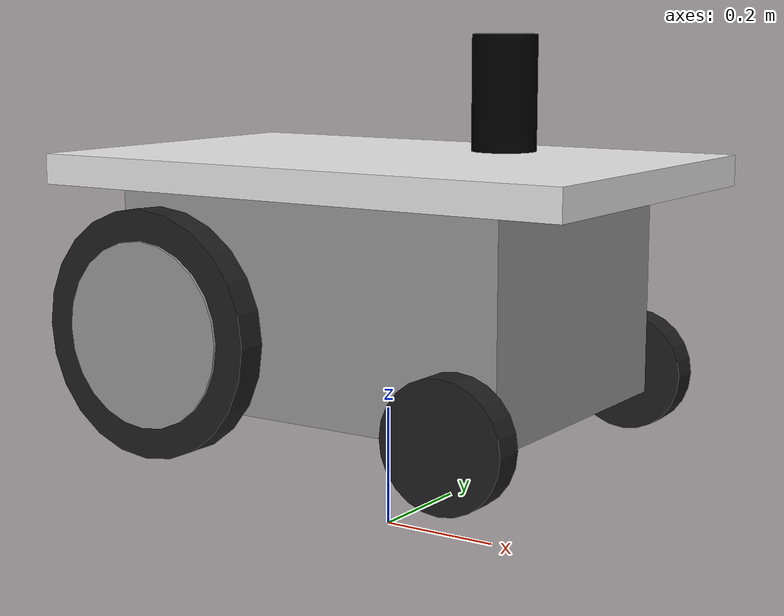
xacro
<?xml version="1.0" encoding="UTF-8"?>
<robot xmlns:xacro="http://www.ros.org/wiki/xacro" name="mm">
   <xacro:include filename="mm.gazebo.xacro" />
   <link name="robot_footprint">
      <origin xyz="0 0 0" rpy="0 0 0" />
   </link>
   <joint name="robot_footprint_joint" type="fixed">
      <origin xyz="0 0 0.6" rpy="0 0 0" />
      <parent link="robot_footprint" />
      <child link="chassis" />
   </joint>
   <link name="chassis">
      <pose>0 0 0.1 0 0 0</pose>
      <inertial>
         <mass value="20.0" />
         <origin xyz="0.0 0 0" rpy=" 0 0 0" />
         <inertia ixx="0.1" ixy="0" ixz="0" iyy="0.1" iyz="0" izz="0.1" />
      </inertial>
      <collision name="collision">
         <origin xyz="0 0 0" rpy=" 0 0 0" />
         <geometry>
            <box size=".95 .6 .05" />
         </geometry>
      </collision>
      <visual name="chassis_visual">
         <origin xyz="0 0 0" rpy=" 0 0 0" />
         <geometry>
            <box size=".95 .6 .05" />
         </geometry>
      </visual>
   </link>
   <link name="box">
      <inertial>
         <mass value="20.0" />
         <origin xyz="0.0 0 0" rpy=" 0 0 0" />
         <inertia ixx="0.1" ixy="0" ixz="0" iyy="0.1" iyz="0" izz="0.1" />
      </inertial>
      <collision name="collision">
         <origin xyz="0 0 0.05" rpy=" 0 0 0" />
         <geometry>
            <box size=".7 .5 .35" />
         </geometry>
      </collision>
      <visual name="box_visual">
         <origin xyz="0 0 0.05" rpy=" 0 0 0" />
         <geometry>
            <box size=".7 .5 .35" />
         </geometry>
      </visual>
   </link>
   <joint name="box_joint" type="fixed">
      <origin xyz="0 0 -0.25" rpy="0 0 0" />
      <parent link="chassis" />
      <child link="box" />
   </joint>
   <link name="front_right_wheel">
      <visual name="front_right_wheel_visual">
         <origin xyz="0.0 0 0" rpy=" 0 1.5707 1.5707" />
         <geometry>
            <cylinder length="0.05" radius="0.1" />
         </geometry>
      </visual>
      <collision>
         <origin xyz="0.0 0 0" rpy=" 0 1.5707 1.5707" />
         <geometry>
            <cylinder length="0.05" radius="0.1" />
         </geometry>
      </collision>
      <inertial>
         <origin xyz="0.0 0 0" rpy=" 0 1.5707 1.5707" />
         <mass value="5.0" />
         <inertia ixx="0.1" ixy="0" ixz="0" iyy="0.1" iyz="0" izz="0.1" />
      </inertial>
   </link>
   <link name="back_right_wheel">
      <visual name="back_right_wheel_visual">
         <origin xyz="0.0 0 0" rpy=" 0 1.5707 1.5707" />
         <geometry>
            <cylinder length="0.05" radius="0.2" />
         </geometry>
      </visual>
      <collision>
         <origin xyz="0.0 0 0" rpy=" 0 1.5707 1.5707" />
         <geometry>
            <cylinder length="0.05" radius="0.2" />
         </geometry>
      </collision>
      <inertial>
         <origin xyz="0.0 0 0" rpy=" 0 1.5707 1.5707" />
         <mass value="0.5" />
         <inertia ixx="0.1" ixy="0" ixz="0" iyy="0.1" iyz="0" izz="0.1" />
      </inertial>
   </link>
   <link name="back_right_wheel_cover">
      <visual name="back_right_wheel_cover_visual">
         <origin xyz="0.0 0 0" rpy=" 0 1.5707 1.5707" />
         <geometry>
            <cylinder length="0.01" radius="0.15" />
         </geometry>
      </visual>
      <collision>
         <origin xyz="0.0 0 0" rpy=" 0 1.5707 1.5707" />
         <geometry>
            <cylinder length="0.01" radius="0.15" />
         </geometry>
      </collision>
      <inertial>
         <origin xyz="0.0 0 0" rpy=" 0 1.5707 1.5707" />
         <inertia ixx="0.1" ixy="0" ixz="0" iyy="0.1" iyz="0" izz="0.1" />
         <mass value="0.01" />
      </inertial>
   </link>
   <joint name="front_right_wheel_joint" type="continuous">
      <axis xyz="0 1 0" rpy="0 0 0" />
      <dynamics damping="1.0" friction="1.0" />
      <parent link="chassis" />
      <child link="front_right_wheel" />
      <origin xyz="0.3 -0.3 -0.35" rpy="0 0 0" />
   </joint>
   <joint name="back_right_wheel_joint" type="continuous">
      <axis xyz="0 1 0" rpy="0 0 0" />
      <dynamics damping="1.0" friction="1.0" />
      <parent link="chassis" />
      <child link="back_right_wheel" />
      <origin xyz="-0.25 -0.3 -0.25" rpy="0 0 0" />
   </joint>
   <joint name="back_right_wheel_cover_joint" type="continuous">
      <axis xyz="0 1 0" rpy="0 0 0" />
      <dynamics damping="1.0" friction="1.0" />
      <parent link="back_right_wheel" />
      <child link="back_right_wheel_cover" />
      <origin xyz="0 -0.025 0" rpy="0 0 0" />
   </joint>
   <link name="front_left_wheel">
      <visual name="front_left_wheel_visual">
         <origin xyz="0.0 0 0" rpy=" 0 1.5707 1.5707" />
         <geometry>
            <cylinder length="0.05" radius="0.1" />
         </geometry>
      </visual>
      <collision>
         <origin xyz="0.0 0 0" rpy=" 0 1.5707 1.5707" />
         <geometry>
            <cylinder length="0.05" radius="0.1" />
         </geometry>
      </collision>
      <inertial>
         <origin xyz="0.0 0 0" rpy=" 0 1.5707 1.5707" />
         <mass value="5.0" />
         <inertia ixx="0.1" ixy="0" ixz="0" iyy="0.1" iyz="0" izz="0.1" />
      </inertial>
   </link>
   <link name="back_left_wheel_cover">
      <visual name="back_left_wheel_cover_visual">
         <origin xyz="0.0 0 0" rpy=" 0 1.5707 1.5707" />
         <geometry>
            <cylinder length="0.01" radius="0.15" />
         </geometry>
      </visual>
      <collision>
         <origin xyz="0.0 0 0" rpy=" 0 1.5707 1.5707" />
         <geometry>
            <cylinder length="0.01" radius="0.15" />
         </geometry>
      </collision>
      <inertial>
         <origin xyz="0.0 0 0" rpy=" 0 1.5707 1.5707" />
         <inertia ixx="0.1" ixy="0" ixz="0" iyy="0.1" iyz="0" izz="0.1" />
         <mass value="0.01" />
      </inertial>
   </link>
   <link name="back_left_wheel">
      <visual name="back_left_wheel_visual">
         <origin xyz="0.0 0 0" rpy=" 0 1.5707 1.5707" />
         <geometry>
            <cylinder length="0.05" radius="0.2" />
         </geometry>
      </visual>
      <collision>
         <origin xyz="0.0 0 0" rpy=" 0 1.5707 1.5707" />
         <geometry>
            <cylinder length="0.05" radius="0.2" />
         </geometry>
      </collision>
      <inertial>
         <origin xyz="0.0 0 0" rpy=" 0 1.5707 1.5707" />
         <inertia ixx="0.1" ixy="0" ixz="0" iyy="0.1" iyz="0" izz="0.1" />
         <mass value="0.5" />
      </inertial>
   </link>
   <joint name="front_left_wheel_joint" type="continuous">
      <axis xyz="0 1 0" rpy="0 0 0" />
      <dynamics damping="1.0" friction="1.0" />
      <parent link="chassis" />
      <child link="front_left_wheel" />
      <origin xyz="0.3 0.3 -0.35" rpy="0 0 0" />
   </joint>
   <joint name="back_left_wheel_joint" type="continuous">
      <axis xyz="0 1 0" rpy="0 0 0" />
      <dynamics damping="1.0" friction="1.0" />
      <parent link="chassis" />
      <child link="back_left_wheel" />
      <origin xyz="-0.25 0.3 -0.25" rpy="0 0 0" />
   </joint>
   <joint name="back_left_wheel_cover_joint" type="continuous">
      <axis xyz="0 1 0" rpy="0 0 0" />
      <parent link="back_left_wheel" />
      <child link="back_left_wheel_cover" />
      <origin xyz="0 0.025 0" rpy="0 0 0" />
   </joint>
   <!-- *********************** IMU SENSOR SETUP **********************************  -->
   <joint name="imu_joint" type="fixed">
    <parent link="chassis"/>
    <child link="imu_link"/>
    <origin xyz="0.10 0 0.05" rpy="0 0 0"/>
  </joint>

   <!-- *********************** IMU SENSOR SETUP **************************  -->
  <link name="imu_link"/>
   <!-- *********************** GPS SETUP **********************************  -->
  <joint name="gps_joint" type="fixed">
    <parent link="chassis"/>
    <child link="gps_link"/>
    <origin xyz="0.10 0 0.05" rpy="0 0 0"/>
  </joint>

  <!-- *********************** GPS SETUP *********************************  -->
  <link name="gps_link"/>

   <!-- *********************** LIDAR SETUP **********************************  -->
  <joint name="lidar_joint" type="fixed">
    <parent link="chassis"/>
    <child link="lidar_link"/>
    <origin xyz="0.215 0 0.13" rpy="0 0 0"/>
  </joint>

  <link name="lidar_link">

    <collision>
     <origin xyz="0 0 0" rpy="0 0 0"/>
     <geometry>
      <cylinder radius="0.0508" length="0.18"/>
     </geometry>
    </collision>

    <visual>
     <origin xyz="0 0 0" rpy="0 0 0"/>
     <geometry>
      <cylinder radius="0.0508" length="0.18"/>
     </geometry>
     <material name="Black">
          <color rgba="${0/255} ${0/255} ${0/255} 1.0"/>
     </material>
    </visual>

    <inertial>
      <mass value="0.114" />
      <origin xyz="0 0 0" rpy="0 0 0"/>
      <inertia ixx="0.001" ixy="0" ixz="0" iyy="0.001" iyz="0" izz="0.001" />
    </inertial>
  </link>
   <gazebo reference="chassis">
      <material>Gazebo/White</material>
   </gazebo>
   <gazebo reference="box">
      <material>Gazebo/Grey</material>
   </gazebo>
   <gazebo reference="front_right_wheel">
      <material>Gazebo/Black</material>
   </gazebo>
   <gazebo reference="front_left_wheel">
      <material>Gazebo/Black</material>
   </gazebo>
   <gazebo reference="back_right_wheel">
      <material>Gazebo/Black</material>
   </gazebo>
   <gazebo reference="back_left_wheel">
      <material>Gazebo/Black</material>
   </gazebo>
   <gazebo reference="back_right_wheel_cover">
      <material>Gazebo/Grey</material>
   </gazebo>
   <gazebo reference="back_left_wheel_cover">
      <material>Gazebo/Grey</material>
   </gazebo>
</robot>
